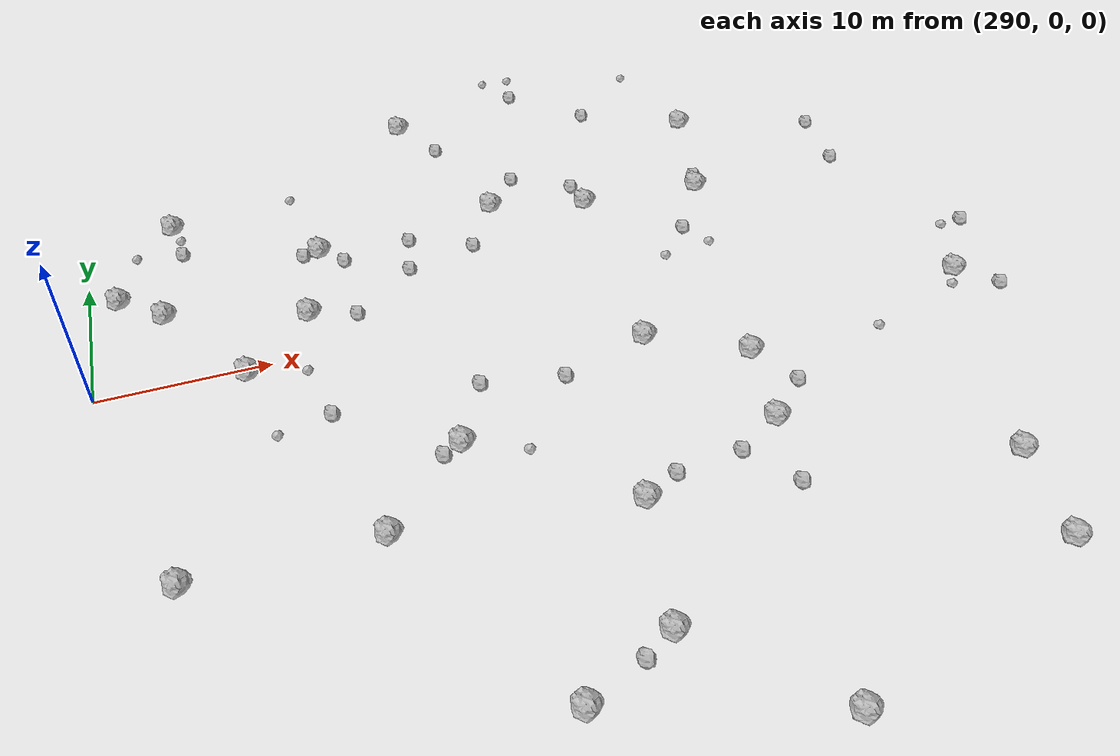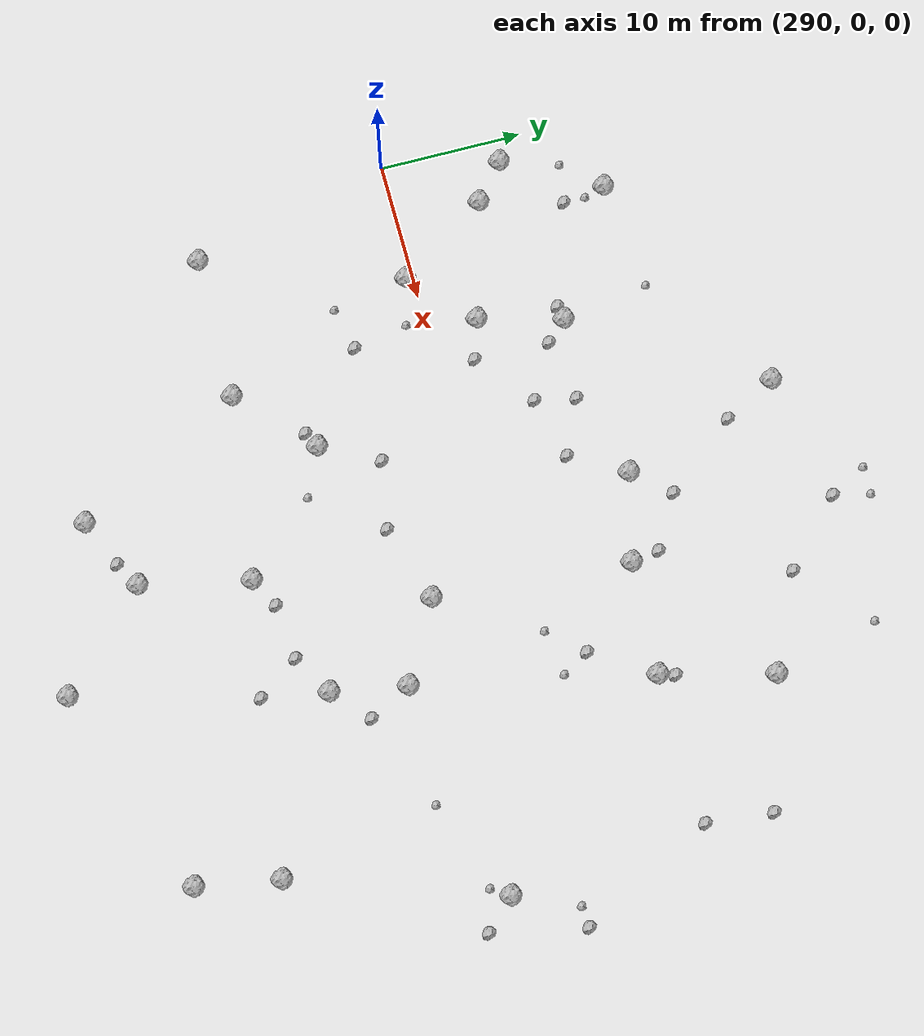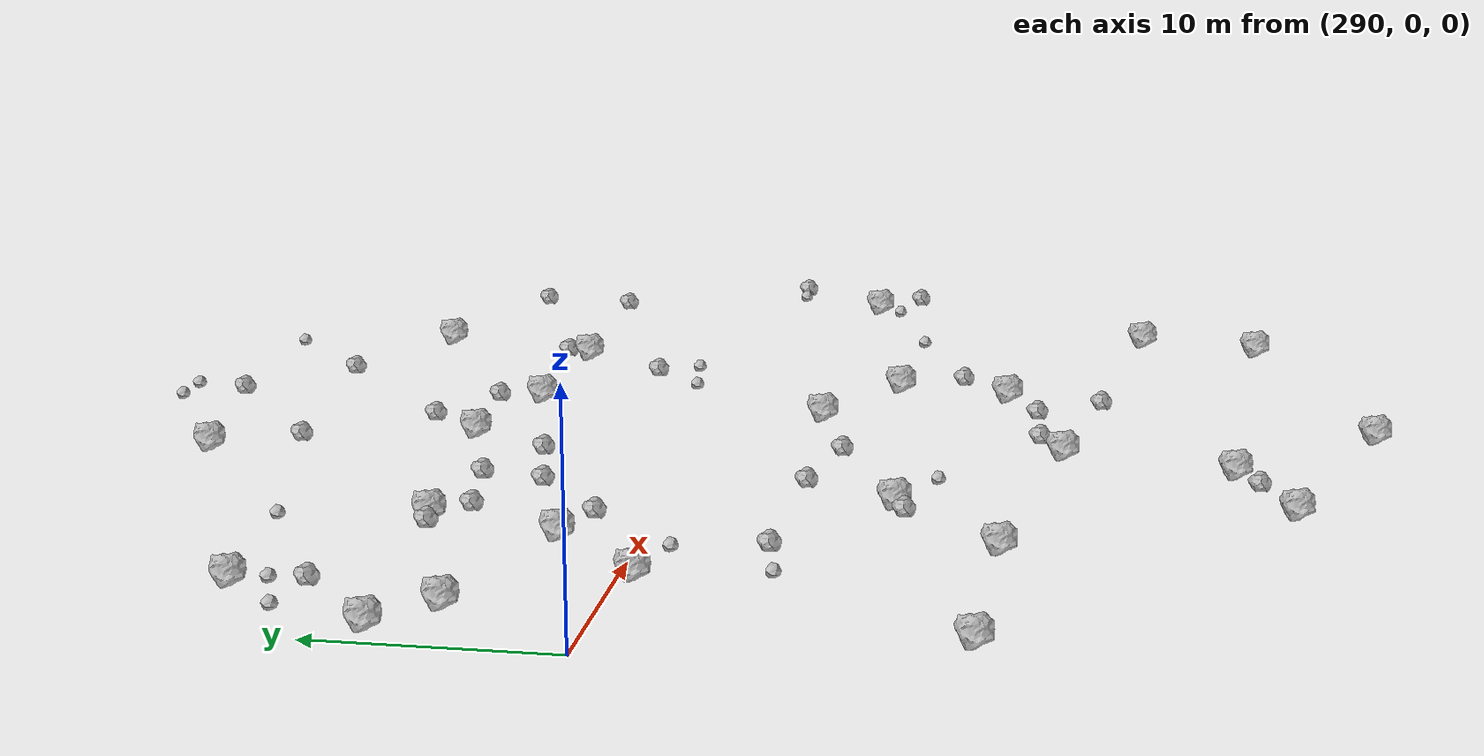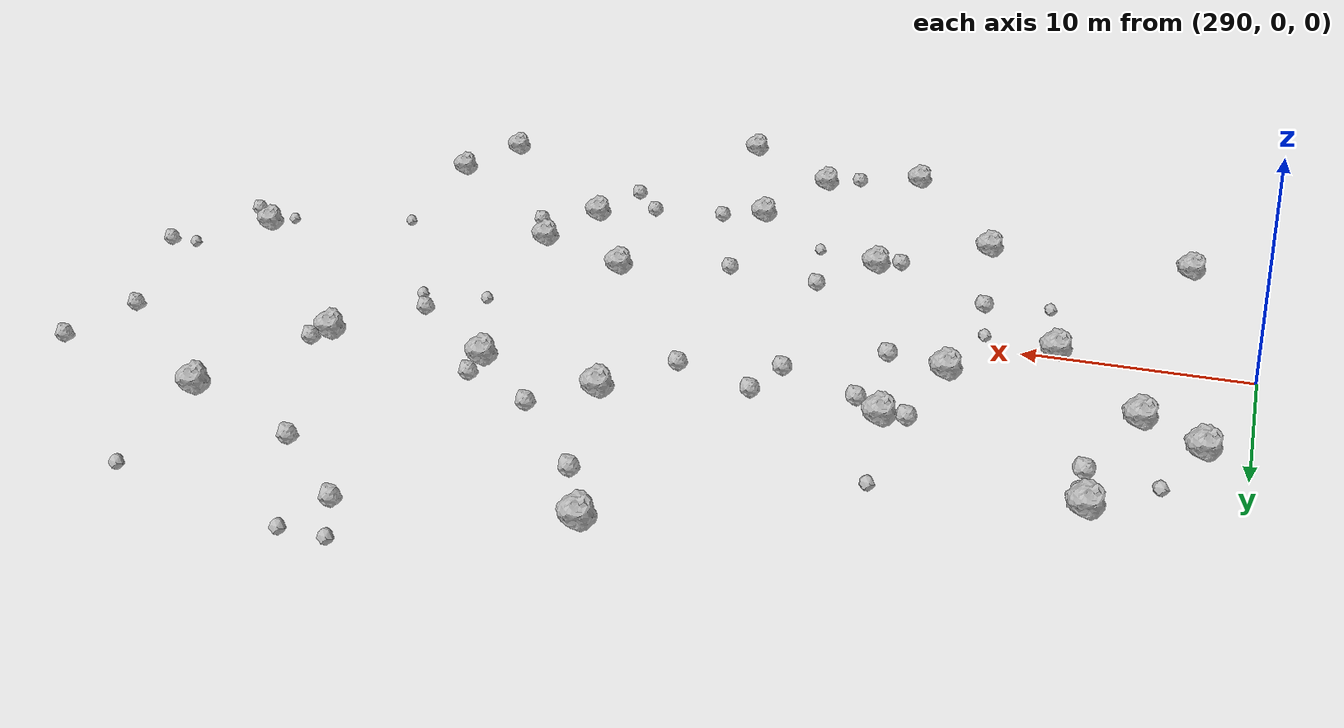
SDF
<sdf version="1.6">
 <world name="default">
  <include><uri>model://sun</uri></include>
  <model name="rock1_8_3">
   <include><uri>model://rock1</uri><pose>330.440720770643 8.511252706516657 0.5 0 0 0</pose></include>
  </model>
  <model name="rock1_8_4">
   <include><uri>model://rock1</uri><pose>316.9802922708633 -16.051268053221335 0.5 0 0 0</pose></include>
  </model>
  <model name="rock1_8_5">
   <include><uri>model://rock1</uri><pose>337.4171834310792 -19.13804681652657 0.5 0 0 0</pose></include>
  </model>
  <model name="rock1_8_6">
   <include><uri>model://rock1</uri><pose>322.43440591455374 8.983337283320743 0.5 0 0 0</pose></include>
  </model>
  <model name="rock1_8_7">
   <include><uri>model://rock1</uri><pose>316.22695955161106 10.549904830999267 0.5 0 0 0</pose></include>
  </model>
  <model name="rock1_8_8">
   <include><uri>model://rock1</uri><pose>321.6767464835953 -29.87690275909213 0.5 0 0 0</pose></include>
  </model>
  <model name="rock1_8_9">
   <include><uri>model://rock1</uri><pose>312.33575506396573 21.781498631572887 0.5 0 0 0</pose></include>
  </model>
  <model name="rock1_8_10">
   <include><uri>model://rock1</uri><pose>321.34464200277506 -4.7038257078805366 0.5 0 0 0</pose></include>
  </model>
  <model name="rock1_8_11">
   <include><uri>model://rock1</uri><pose>303.873042338911 -14.18972437481452 0.5 0 0 0</pose></include>
  </model>
  <model name="rock1_8_12">
   <include><uri>model://rock1</uri><pose>315.3175563002983 -23.57417984392565 0.5 0 0 0</pose></include>
  </model>
  <model name="rock1_8_13">
   <include><uri>model://rock1</uri><pose>332.4696232126904 16.18983041353607 0.5 0 0 0</pose></include>
  </model>
  <model name="rock1_8_14">
   <include><uri>model://rock1</uri><pose>310.1357084569358 -25.99863316480143 0.5 0 0 0</pose></include>
  </model>
  <model name="rock1_8_15">
   <include><uri>model://rock1</uri><pose>293.5912954152972 -14.058078720064564 0.5 0 0 0</pose></include>
  </model>
  <model name="rock1_8_16">
   <include><uri>model://rock1</uri><pose>325.9072172609232 -12.978086908560066 0.5 0 0 0</pose></include>
  </model>
  <model name="rock1_8_17">
   <include><uri>model://rock1</uri><pose>291.78650980630414 8.061741799534992 0.5 0 0 0</pose></include>
  </model>
  <model name="rock1_8_18">
   <include><uri>model://rock1</uri><pose>295.5051253522529 14.588489475242241 0.5 0 0 0</pose></include>
  </model>
  <model name="rock1_8_19">
   <include><uri>model://rock1</uri><pose>298.57114365104695 -0.5044417780812012 0.5 0 0 0</pose></include>
  </model>
  <model name="rock1_8_20">
   <include><uri>model://rock1</uri><pose>302.754787794212 3.474947911775203 0.5 0 0 0</pose></include>
  </model>
  <model name="rock1_8_21">
   <include><uri>model://rock1</uri><pose>336.39952089377505 -24.83485575877162 0.5 0 0 0</pose></include>
  </model>
  <model name="rock1_8_22">
   <include><uri>model://rock1</uri><pose>304.34434158248786 9.258888920762885 0.5 0 0 0</pose></include>
  </model>
  <model name="rock1_8_23">
   <include><uri>model://rock1</uri><pose>308.9121505737229 -9.455558704057935 0.5 0 0 0</pose></include>
  </model>
  <model name="rock1_8_24">
   <include><uri>model://rock1</uri><pose>294.35879404562337 5.893384301325092 0.5 0 0 0</pose></include>
  </model>
  <model name="rock1_8_25">
   <include><uri>model://rock1</uri><pose>326.85346171593955 -7.761471129452669 0.5 0 0 0</pose></include>
  </model>
  <model name="rock1_8_26">
   <include><uri>model://rock1</uri><pose>342.38997127864525 -4.934008867844813 0.5 0 0 0</pose></include>
  </model>
  <model name="rock2_8_0">
   <include><uri>model://rock2</uri><pose>309.47529174299336 5.746392086897572 0.3 0 0 0</pose></include>
  </model>
  <model name="rock2_8_1">
   <include><uri>model://rock2</uri><pose>328.35564054839347 -10.699287528845453 0.3 0 0 0</pose></include>
  </model>
  <model name="rock2_8_2">
   <include><uri>model://rock2</uri><pose>344.36600427825016 -6.955903939451776 0.3 0 0 0</pose></include>
  </model>
  <model name="rock2_8_3">
   <include><uri>model://rock2</uri><pose>305.6713493185356 7.839049030276669 0.3 0 0 0</pose></include>
  </model>
  <model name="rock2_8_4">
   <include><uri>model://rock2</uri><pose>314.2129102285478 18.15384305269167 0.3 0 0 0</pose></include>
  </model>
  <model name="rock2_8_5">
   <include><uri>model://rock2</uri><pose>307.7177093485086 -9.985107927889963 0.3 0 0 0</pose></include>
  </model>
  <model name="rock2_8_6">
   <include><uri>model://rock2</uri><pose>295.8961452138234 11.621787267703674 0.3 0 0 0</pose></include>
  </model>
  <model name="rock2_8_7">
   <include><uri>model://rock2</uri><pose>330.73676625189563 9.660796756546041 0.3 0 0 0</pose></include>
  </model>
  <model name="rock2_8_8">
   <include><uri>model://rock2</uri><pose>325.07697354814337 -17.467292870650304 0.3 0 0 0</pose></include>
  </model>
  <model name="rock2_8_9">
   <include><uri>model://rock2</uri><pose>313.92745378797713 6.814405130210083 0.3 0 0 0</pose></include>
  </model>
  <model name="rock2_8_10">
   <include><uri>model://rock2</uri><pose>327.6643356696253 4.373257980532522 0.3 0 0 0</pose></include>
  </model>
  <model name="rock2_8_11">
   <include><uri>model://rock2</uri><pose>345.7056010218378 -0.5270301533203892 0.3 0 0 0</pose></include>
  </model>
  <model name="rock2_8_12">
   <include><uri>model://rock2</uri><pose>315.8296182364376 -6.350371508567029 0.3 0 0 0</pose></include>
  </model>
  <model name="rock2_8_13">
   <include><uri>model://rock2</uri><pose>310.06978336952454 8.574091980765289 0.3 0 0 0</pose></include>
  </model>
  <model name="rock2_8_14">
   <include><uri>model://rock2</uri><pose>323.0011155372838 -14.574704276035717 0.3 0 0 0</pose></include>
  </model>
  <model name="rock2_8_15">
   <include><uri>model://rock2</uri><pose>318.378185195568 13.076098326013955 0.3 0 0 0</pose></include>
  </model>
  <model name="rock2_8_16">
   <include><uri>model://rock2</uri><pose>322.07161350019464 10.973442455070547 0.3 0 0 0</pose></include>
  </model>
  <model name="rock2_8_17">
   <include><uri>model://rock2</uri><pose>305.5194856308977 2.581614908793661 0.3 0 0 0</pose></include>
  </model>
  <model name="rock2_8_18">
   <include><uri>model://rock2</uri><pose>321.3565160629017 23.4732958314084 0.3 0 0 0</pose></include>
  </model>
  <model name="rock2_8_19">
   <include><uri>model://rock2</uri><pose>341.4651248875357 13.338017938170708 0.3 0 0 0</pose></include>
  </model>
  <model name="rock2_8_20">
   <include><uri>model://rock2</uri><pose>313.47977018011 -24.56596112498094 0.3 0 0 0</pose></include>
  </model>
  <model name="rock2_8_21">
   <include><uri>model://rock2</uri><pose>310.99450495374504 -5.4506428662737605 0.3 0 0 0</pose></include>
  </model>
  <model name="rock2_8_22">
   <include><uri>model://rock2</uri><pose>302.5818914907593 -5.182155763743765 0.3 0 0 0</pose></include>
  </model>
  <model name="rock2_8_23">
   <include><uri>model://rock2</uri><pose>303.2535412235121 9.100693636474169 0.3 0 0 0</pose></include>
  </model>
  <model name="rock2_8_24">
   <include><uri>model://rock2</uri><pose>325.7951196338034 19.343892211744503 0.3 0 0 0</pose></include>
  </model>
  <model name="rock2_8_25">
   <include><uri>model://rock2</uri><pose>341.0009215189966 8.733575549676253 0.3 0 0 0</pose></include>
  </model>
  <model name="rock2_8_26">
   <include><uri>model://rock2</uri><pose>319.07256313281005 -14.9333805430316 0.3 0 0 0</pose></include>
  </model>
  <model name="rock3_8_0">
   <include><uri>model://rock3</uri><pose>299.4792192815471 -5.854492298267438 0.2 0 0 0</pose></include>
  </model>
  <model name="rock3_8_1">
   <include><uri>model://rock3</uri><pose>328.75308294603553 2.478425112086377 0.2 0 0 0</pose></include>
  </model>
  <model name="rock3_8_2">
   <include><uri>model://rock3</uri><pose>303.30251706766836 15.403055564549334 0.2 0 0 0</pose></include>
  </model>
  <model name="rock3_8_3">
   <include><uri>model://rock3</uri><pose>319.9392125345009 26.039137080470873 0.2 0 0 0</pose></include>
  </model>
  <model name="rock3_8_4">
   <include><uri>model://rock3</uri><pose>295.86564481417486 13.132814745382994 0.2 0 0 0</pose></include>
  </model>
  <model name="rock3_8_5">
   <include><uri>model://rock3</uri><pose>335.15437533540893 -8.115301486666638 0.2 0 0 0</pose></include>
  </model>
  <model name="rock3_8_6">
   <include><uri>model://rock3</uri><pose>344.1973086097456 -0.6464722059673349 0.2 0 0 0</pose></include>
  </model>
  <model name="rock3_8_7">
   <include><uri>model://rock3</uri><pose>330.59187186232197 23.602277792372078 0.2 0 0 0</pose></include>
  </model>
  <model name="rock3_8_8">
   <include><uri>model://rock3</uri><pose>293.0301117380748 12.067726755367836 0.2 0 0 0</pose></include>
  </model>
  <model name="rock3_8_9">
   <include><uri>model://rock3</uri><pose>312.22660333722143 -10.99821507994178 0.2 0 0 0</pose></include>
  </model>
  <model name="rock3_8_10">
   <include><uri>model://rock3</uri><pose>321.9147146211603 25.97869034467771 0.2 0 0 0</pose></include>
  </model>
  <model name="rock3_8_11">
   <include><uri>model://rock3</uri><pose>301.8487948117059 -1.357274965040915 0.2 0 0 0</pose></include>
  </model>
  <model name="rock3_8_12">
   <include><uri>model://rock3</uri><pose>341.50531290641584 -6.1495003379758515 0.2 0 0 0</pose></include>
  </model>
  <model name="rock3_8_13">
   <include><uri>model://rock3</uri><pose>325.4968610563586 2.0050514382098967 0.2 0 0 0</pose></include>
  </model>
 </world>
</sdf>
